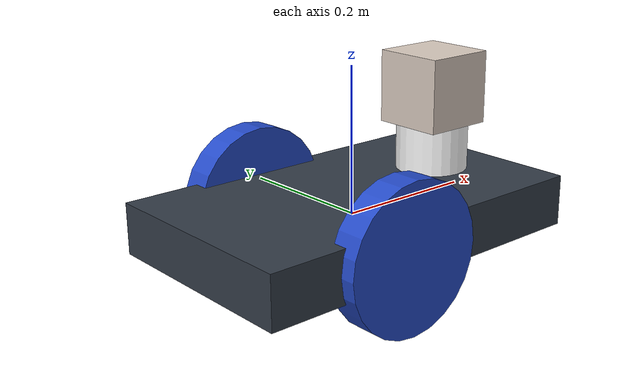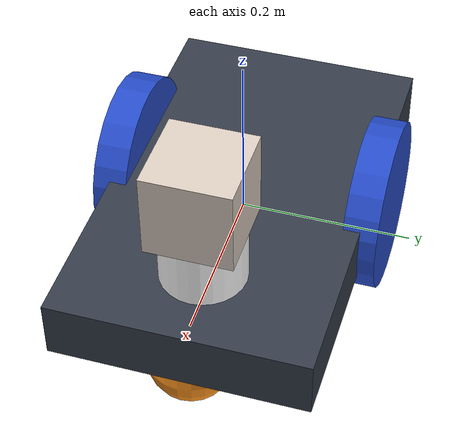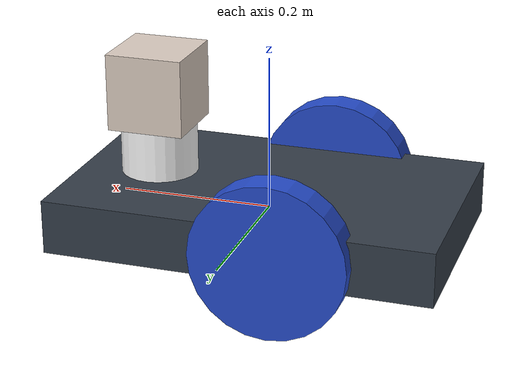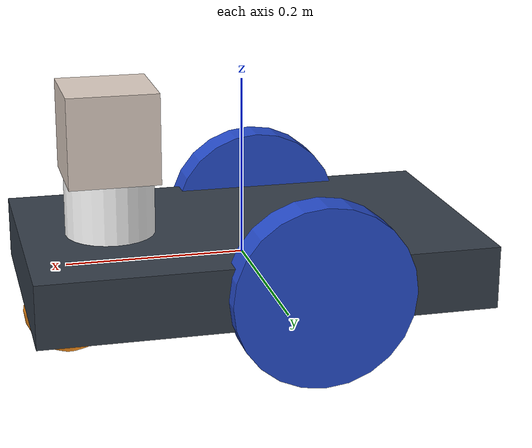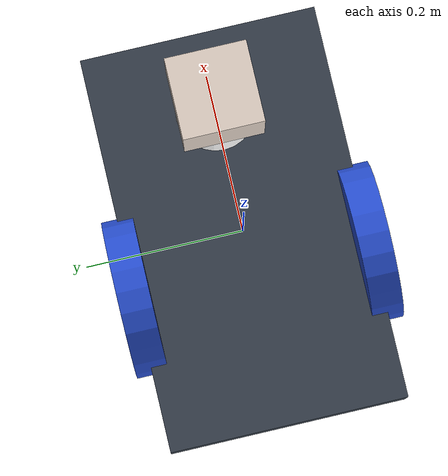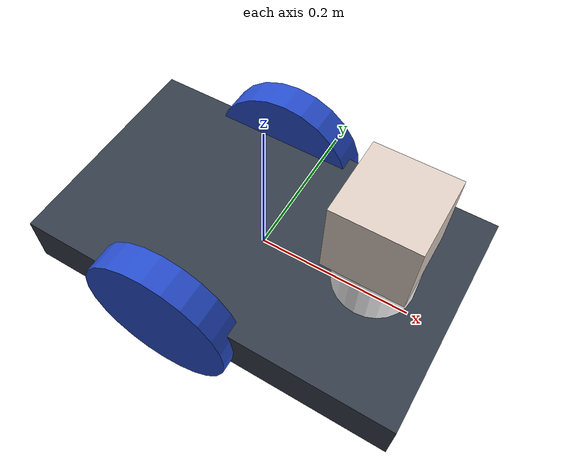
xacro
<?xml version="1.0" ?>
<robot name="mrobot" xmlns:xacro="http://www.ros.org/wiki/xacro">

  <material name="black">
    <color rgba="0.0 0.0 0.0 1.0"/>
  </material>
  <material name="blue">
    <color rgba="0.203125 0.23828125 0.28515625 1.0"/>
  </material>
  <material name="green">
    <color rgba="0.0 0.8 0.0 1.0"/>
  </material>
  <material name="grey">
    <color rgba="0.2 0.2 0.2 1.0"/>
  </material>
  <material name="orange">
    <color rgba="1.0 0.423529411765 0.0392156862745 1.0"/>
  </material>
  <material name="brown">
    <color rgba="0.870588235294 0.811764705882 0.764705882353 1.0"/>
  </material>
  <material name="red">
    <color rgba="0.80078125 0.12890625 0.1328125 1.0"/>
  </material>
  <material name="white">
    <color rgba="1.0 1.0 1.0 1.0"/>
  </material>

  <gazebo reference="link_chassis">
    <material>Gazebo/Orange</material>
  </gazebo>
  <gazebo reference="link_left_wheel">
    <material>Gazebo/Blue</material>
  </gazebo>
  <gazebo reference="link_right_wheel">
    <material>Gazebo/Blue</material>
  </gazebo>

  <!--plugin differential drive-->
  <gazebo>
    <plugin filename="libgazebo_ros_diff_drive.so" name="differential_drive_controller">
      <legacyMode>false</legacyMode>
      <alwaysOn>true</alwaysOn>
      <updateRate>20</updateRate>
      <leftJoint>joint_left_wheel</leftJoint>
      <rightJoint>joint_right_wheel</rightJoint>
      <wheelSeparation>0.2</wheelSeparation>
      <wheelDiameter>0.2</wheelDiameter>
      <torque>0.1</torque>
      <commandTopic>cmd_vel</commandTopic>
      <odometryTopic>odom</odometryTopic>
      <odometryFrame>odom</odometryFrame>
      <robotBaseFrame>link_chassis</robotBaseFrame>
    </plugin>
  </gazebo>

  <!--plugin lidar-->
  <gazebo reference="sensor_laser">
    <sensor type="ray" name="head_hokuyo_sensor">
      <pose>0 0 0 0 0 0</pose>
      <visualize>false</visualize>
      <update_rate>20</update_rate>
      <ray>
        <scan>
          <horizontal>
            <samples>720</samples>
            <resolution>1</resolution>
            <min_angle>-1.570796</min_angle>
            <max_angle>1.570796</max_angle>
          </horizontal>
        </scan>
        <range>
          <min>0.10</min>
          <max>10.0</max>
          <resolution>0.01</resolution>
        </range>
        <noise>
          <type>gaussian</type>
          <mean>0.0</mean>
          <stddev>0.01</stddev>
        </noise>
      </ray>
      <plugin name="gazebo_ros_head_hokuyo_controller" filename="libgazebo_ros_laser.so">
        <topicName>/mrobot/laser/scan</topicName>
        <frameName>sensor_laser</frameName>
      </plugin>
    </sensor>
  </gazebo>

  <!-- plugins camera -->
  <gazebo reference="camera_link">
    <sensor type="camera" name="camera1">
      <update_rate>30.0</update_rate>
      <camera name="head">
        <horizontal_fov>1.3962634</horizontal_fov>
        <image>
          <width>800</width>
          <height>800</height>
          <format>R8G8B8</format>
        </image>
        <clip>
          <near>0.02</near>
          <far>300</far>
        </clip>
        <noise>
          <type>gaussian</type>
          <mean>0.0</mean>
          <stddev>0.007</stddev>
        </noise>
      </camera>
      <plugin name="camera_controller" filename="libgazebo_ros_camera.so">
        <alwaysOn>true</alwaysOn>
        <updateRate>0.0</updateRate>
        <cameraName>rrbot/camera1</cameraName>
        <imageTopicName>image_raw</imageTopicName>
        <cameraInfoTopicName>camera_info</cameraInfoTopicName>
        <frameName>camera_link</frameName>
        <hackBaseline>0.07</hackBaseline>
        <distortionK1>0.0</distortionK1>
        <distortionK2>0.0</distortionK2>
        <distortionK3>0.0</distortionK3>
        <distortionT1>0.0</distortionT1>
        <distortionT2>0.0</distortionT2>
      </plugin>
    </sensor>
  </gazebo>

  <link name="link_chassis">
    <!-- pose and inertial -->
    <pose>0 0 0.1 0 0 0</pose>
    <inertial>
      <mass value="5"/>
      <origin rpy="0 0 0" xyz="0 0 0.1"/>
      <inertia ixx="0.0395416666667" ixy="0" ixz="0" iyy="0.106208333333" iyz="0" izz="0.106208333333"/>
    </inertial>
    <!-- body -->
    <collision name="collision_chassis">
      <geometry>
        <box size="0.5 0.3 0.07"/>
      </geometry>
    </collision>
    <visual>
      <origin rpy="0 0 0" xyz="0 0 0"/>
      <geometry>
        <box size="0.5 0.3 0.07"/>
      </geometry>
      <material name="blue"/>
    </visual>
    <!-- caster front -->
    <collision name="caster_front_collision">
      <origin rpy=" 0 0 0" xyz="0.35 0 -0.05"/>
      <geometry>
        <sphere radius="0.05"/>
      </geometry>
      <surface>
        <friction>
          <ode>
            <mu>0</mu>
            <mu2>0</mu2>
            <slip1>1.0</slip1>
            <slip2>1.0</slip2>
          </ode>
        </friction>
      </surface>
    </collision>
    <visual name="caster_front_visual">
      <origin rpy=" 0 0 0" xyz="0.2 0 -0.05"/>
      <geometry>
        <sphere radius="0.05"/>
      </geometry>
    </visual>
  </link>

  <!-- camera -->
  <link name="camera_link">
    <inertial>
        <origin xyz="0 0 0" rpy="0 0 0" />
        <mass value="0.1" />
        <inertia  ixx="0" ixy = "0" ixz = "0"
                  iyy="0" iyz = "0"
                  izz="0" />
    </inertial>
    <visual>
      <origin rpy="0 0 0" xyz="0 0 0"/>
      <geometry>
        <box size="0.1 0.1 0.1"/>
      </geometry>
      <material name="brown"/>
    </visual>
    <collision>
      <origin xyz="0 0 0" rpy="0 0 0"/>
      <geometry>
      <box size="0.05 0.05 0.05"/>
      </geometry>
    </collision>
  </link>

  <joint name="joint_camera" type="fixed">
    <origin xyz="0.15 0 0.15" rpy="0 0 0"/>
    <parent link="link_chassis"/>
    <child link="camera_link"/>
  </joint>

  <!-- Lidar -->
  <link name="sensor_laser">
    <inertial>
        <origin xyz="0 0 0" rpy="0 0 0" />
        <mass value="1" />
        <inertia  ixx="0.06333333333" ixy = "0" ixz = "0"
                  iyy="0.06333333333" iyz = "0"
                  izz="0.06333333333" />
    </inertial>
    <visual>
        <origin xyz="0 0 0" rpy="0 0 0" />
        <geometry>
        <cylinder radius="0.05" length="0.1"/>
        </geometry>
        <material name="white" />
    </visual>
    <collision>
        <origin xyz="0 0 0" rpy="0 0 0"/>
        <geometry>
        <cylinder radius="0.05" length="0.1"/>
        </geometry>
    </collision>
  </link>

  <joint name="joint_sensor_laser" type="fixed">
    <origin xyz="0.15 0 0.05" rpy="0 0 0"/>
    <parent link="link_chassis"/>
    <child link="sensor_laser"/>
  </joint>

  <!-- right_wheel -->
  <link name="link_right_wheel">
    <inertial>
      <mass value="0.2"/>
      <origin rpy="0 1.5707 1.5707" xyz="0 0 0"/>
      <inertia ixx="0.000526666666667" ixy="0" ixz="0" iyy="0.000526666666667" iyz="0" izz="0.001"/>
    </inertial>
    <collision name="link_right_wheel_collision">
      <origin rpy="0 1.5707 1.5707" xyz="0 0 0"/>
      <geometry>
        <cylinder length="0.04" radius="0.1"/>
      </geometry>
    </collision>
    <visual name="link_right_wheel_visual">
      <origin rpy="0 1.5707 1.5707" xyz="0 0 0"/>
      <geometry>
        <cylinder length="0.04" radius="0.1"/>
      </geometry>
    </visual>
  </link>

  <joint name="joint_right_wheel" type="continuous">
    <origin rpy="0 0 0" xyz="-0.05 0.15 0"/>
    <child link="link_right_wheel"/>
    <parent link="link_chassis"/>
    <axis rpy="0 0 0" xyz="0 1 0"/>
    <limit effort="10000" velocity="1000"/>
    <joint_properties damping="1.0" friction="1.0"/>
  </joint>

  <!-- left_wheel -->
  <link name="link_left_wheel">
    <inertial>
      <mass value="0.2"/>
      <origin rpy="0 1.5707 1.5707" xyz="0 0 0"/>
      <inertia ixx="0.000526666666667" ixy="0" ixz="0" iyy="0.000526666666667" iyz="0" izz="0.001"/>
    </inertial>
    <collision name="link_left_wheel_collision">
      <origin rpy="0 1.5707 1.5707" xyz="0 0 0"/>
      <geometry>
        <cylinder length="0.04" radius="0.1"/>
      </geometry>
    </collision>
    <visual name="link_left_wheel_visual">
      <origin rpy="0 1.5707 1.5707" xyz="0 0 0"/>
      <geometry>
        <cylinder length="0.04" radius="0.1"/>
      </geometry>
    </visual>
  </link>

  <joint name="joint_left_wheel" type="continuous">
    <origin rpy="0 0 0" xyz="-0.05 -0.15 0"/>
    <child link="link_left_wheel"/>
    <parent link="link_chassis"/>
    <axis rpy="0 0 0" xyz="0 1 0"/>
    <limit effort="10000" velocity="1000"/>
    <joint_properties damping="1.0" friction="1.0"/>
  </joint>
</robot>
